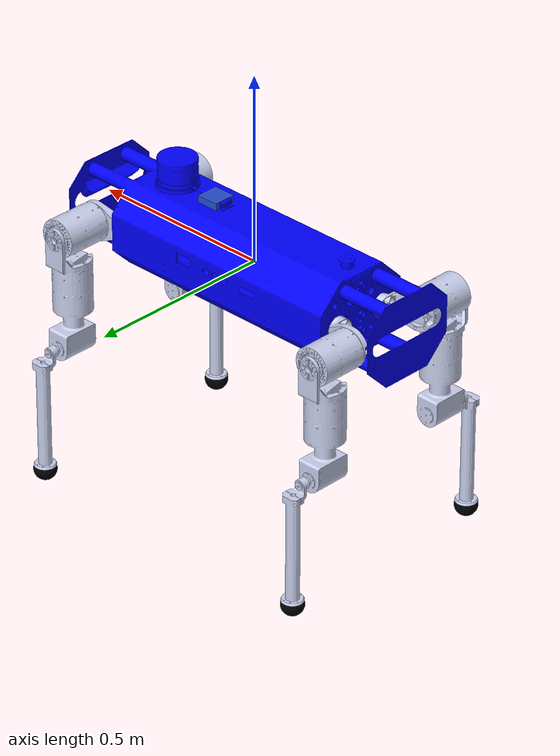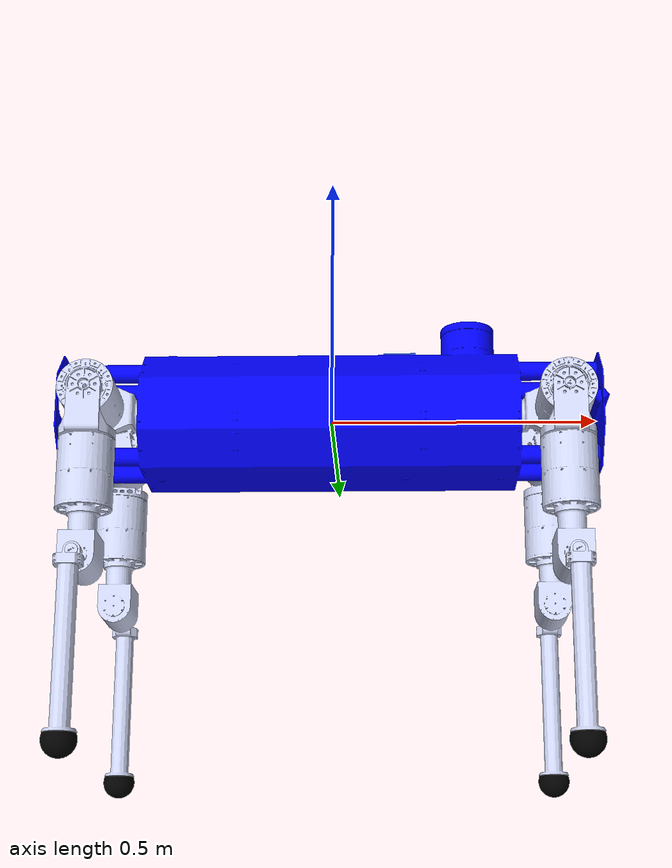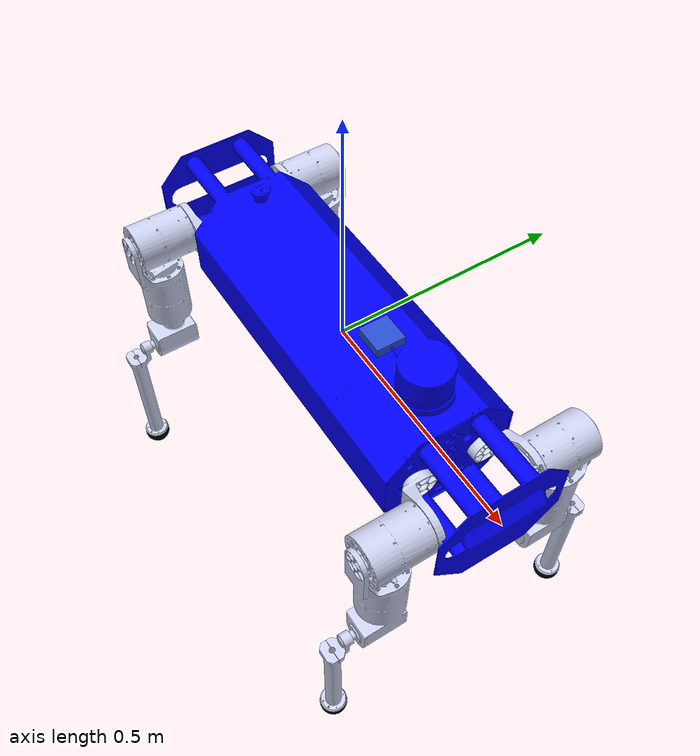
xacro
<?xml version="1.0" encoding="utf-8"?>
<robot name="quadruped_model" xmlns:xacro="http://ros.org/wiki/xacro">

    <link name="imu_link">
      <inertial>
        <mass value="0.1"/>
        <origin rpy="0 0 0" xyz="0 0 0"/>
        <inertia ixx="0.0001" ixy="0" ixz="0" iyy="0.000001" iyz="0" izz="0.0001"/>
      </inertial>
      <visual>
        <origin rpy="0 0 0" xyz="0 0 0"/>
        <geometry>
          <box size="0.06 0.06 0.02"/>
        </geometry>
      </visual>
      <collision>
        <origin rpy="0 0 0" xyz="0 0 0"/>
        <geometry>
          <box size="0.06 0.06 0.02"/>
        </geometry>
      </collision>
    </link>
    <joint name="imu_joint" type="fixed">
        <axis xyz="0 0 0"/>
        <origin xyz="0.13 0 0.12" rpy="0 0 0"/>
        <parent link="base_link"/>
        <child link="imu_link"/>
    </joint>

    <xacro:include filename="$(find simpledog)/urdf/simpledog_gazebo.urdf.xacro" />
    <xacro:include filename="$(find simpledog)/urdf/joint_gazebo.urdf.xacro" />
    <xacro:include filename="$(find simpledog)/urdf/foot_sensor_gazebo.urdf.xacro" />

    <!--load kinect urdf-->

  <link name="zed_base_link">
    <origin xyz="0 0 0" rpy="0 0 0"/>
  </link>
  <joint name="zed_base_joint" type="fixed">
    <origin xyz="0.48 0.0 0.15" rpy="0 0.8 0" />
    <parent link="base_link"/>
    <child link="zed_base_link"/>
  </joint>

  <!-- simple dog joints macros configure the joint driver and param-->
  <xacro:simpledog_joint joint_prefix="front_left_1_"> </xacro:simpledog_joint>
  <xacro:simpledog_joint joint_prefix="front_left_2_"> </xacro:simpledog_joint>
  <xacro:simpledog_joint joint_prefix="front_left_3_"> </xacro:simpledog_joint>
  <xacro:simpledog_joint joint_prefix="front_right_1_"> </xacro:simpledog_joint>
  <xacro:simpledog_joint joint_prefix="front_right_2_"> </xacro:simpledog_joint>
  <xacro:simpledog_joint joint_prefix="front_right_3_"> </xacro:simpledog_joint>
  <xacro:simpledog_joint joint_prefix="rear_right_1_"> </xacro:simpledog_joint>
  <xacro:simpledog_joint joint_prefix="rear_right_2_"> </xacro:simpledog_joint>
  <xacro:simpledog_joint joint_prefix="rear_right_3_"> </xacro:simpledog_joint>
  <xacro:simpledog_joint joint_prefix="rear_left_1_"> </xacro:simpledog_joint>
  <xacro:simpledog_joint joint_prefix="rear_left_2_"> </xacro:simpledog_joint>
  <xacro:simpledog_joint joint_prefix="rear_left_3_"> </xacro:simpledog_joint>

  <xacro:simpledog_foot_sensors foot_prefix="lf_foot" joint_prefix="front_left_3_"> </xacro:simpledog_foot_sensors>
  <xacro:simpledog_foot_sensors foot_prefix="rf_foot" joint_prefix="front_right_3_"> </xacro:simpledog_foot_sensors>
  <xacro:simpledog_foot_sensors foot_prefix="rh_foot" joint_prefix="rear_right_3_"> </xacro:simpledog_foot_sensors>
  <xacro:simpledog_foot_sensors foot_prefix="lh_foot" joint_prefix="rear_left_3_"> </xacro:simpledog_foot_sensors>

  <link
    name="base_link">
    <inertial>
      <origin
        xyz="0.006699 -0.000736 0.001288"
        rpy="0 0 0" />
      <mass
        value="37.801" />
      <inertia
        ixx="0.263893"
        ixy="0"
        ixz="0"
        iyy="2.018032"
        iyz="0"
        izz="2.056458" />
    </inertial>
    <visual>
      <origin
        xyz="0 0 0"
        rpy="0 0 0" />
      <geometry>
        <mesh
          filename="package://simpledog/meshes/quadruped/base_link.STL" />
      </geometry>
      <material
        name="">
        <color
          rgba="0 0 1 1" />
      </material>
    </visual>
    <collision>
      <origin
        xyz="0 0 0"
        rpy="0 0 0" />
      <geometry>
        <mesh
          filename="package://simpledog/meshes/quadruped/base_link.STL" />
      </geometry>
    </collision>
  </link>
  <link
    name="front_left_1_Link">
    <inertial>
      <origin
        xyz="0.000688 0.10488 -0.003776"
        rpy="0 0 0" />
      <mass
        value="2.9231" />
      <inertia
        ixx="0.004820"
        ixy="0"
        ixz="0"
        iyy="0.007868"
        iyz="0"
        izz="0.008241" />
    </inertial>
    <visual>
      <origin
        xyz="0 0 0"
        rpy="0 0 0" />
      <geometry>
        <mesh
          filename="package://simpledog/meshes/quadruped/Origin_front_left_1_link.STL" />
      </geometry>
      <material
        name="">
        <color
          rgba="0.79216 0.81961 0.93333 1" />
      </material>
    </visual>
    <collision>
      <origin
        xyz="0 0 0"
        rpy="0 0 0" />
      <geometry>
        <mesh
          filename="package://simpledog/meshes/quadruped/Origin_front_left_1_link.STL" />
      </geometry>
    </collision>
  </link>
  <joint
    name="front_left_1_joint"
    type="revolute">
    <origin
      xyz="0.427 0.075 -0.0095"
      rpy="0 1.5708 0" />
    <parent
      link="base_link" />
    <child
      link="front_left_1_Link" />
    <axis
      xyz="0 0 1" />
      <limit
      effort="60"
      velocity="10"
      lower="-3.0"
      upper="3.0"/>

  </joint>
  <link
    name="front_left_2_Link">
    <inertial>
      <origin
        xyz="0.18475 3.2E-05 0.12906"
        rpy="0 0 0" />
      <mass
        value="4.2164" />
      <inertia
        ixx="0.006286"
        ixy="0"
        ixz="0"
        iyy="0.028156"
        iyz="0"
        izz="0.029242" />
    </inertial>
    <visual>
      <origin
        xyz="0 0 0"
        rpy="0 0 0" />
      <geometry>
        <mesh
          filename="package://simpledog/meshes/quadruped/Origin_front_left_2_link.STL" />
      </geometry>
      <material
        name="">
        <color
          rgba="0.79216 0.81961 0.93333 1" />
      </material>
    </visual>
    <collision>
      <origin
        xyz="0 0 0"
        rpy="0 0 0" />
      <geometry>
        <mesh
          filename="package://simpledog/meshes/quadruped/Origin_front_left_2_link.STL" />
      </geometry>
    </collision>
  </link>
  <joint
    name="front_left_2_joint"
    type="continuous">
    <origin
      xyz="0 0 0"
      rpy="-1.5708 0 0" />
    <parent
      link="front_left_1_Link" />
    <child
      link="front_left_2_Link" />
    <axis
      xyz="0 0 1" />
      <limit
      effort="60"
      velocity="10"
      lower="-7.0"
      upper="7.0"/>

  </joint>
  <link
    name="front_left_3_Link">
    <inertial>
      <origin
        xyz="0.20231 0.000199 0.22543"
        rpy="0 0 0" />
      <mass
        value="0.44457" />
      <inertia
        ixx="0.000385"
        ixy="0"
        ixz="0"
        iyy="0.006223"
        iyz="0"
        izz="0.006502" />
    </inertial>
    <visual>
      <origin
        xyz="0 0 0"
        rpy="0 0 0" />
      <geometry>
        <mesh
          filename="package://simpledog/meshes/quadruped/Origin_front_left_3_link.STL" />
      </geometry>
      <material
        name="">
        <color
          rgba="0.79216 0.81961 0.93333 1" />
      </material>
    </visual>
    <collision>
      <origin
        xyz="0 0 0"
        rpy="0 0 0" />
      <geometry>
        <mesh
          filename="package://simpledog/meshes/quadruped/Origin_front_left_3_link.STL" />
      </geometry>
    </collision>
  </link>
  <joint
    name="front_left_3_joint"
    type="continuous">
    <origin
      xyz="0.308 0 0"
      rpy="0 0 0" />
    <parent
      link="front_left_2_Link" />
    <child
      link="front_left_3_Link" />
    <axis
      xyz="0 0 1" />
      <limit
      effort="60"
      velocity="10"
      lower="-3.0"
      upper="3.0"/>

  </joint>
  <link
    name="lf_foot_Link">
    <inertial>
      <origin
        xyz="0.022126 -1.2357E-13 0.00049896"
        rpy="0 0 0" />
      <mass
        value="0.03332" />
      <inertia
        ixx="0.000014"
        ixy="0"
        ixz="0"
        iyy="0.000014"
        iyz="0"
        izz="0.000019" />
    </inertial>
    <visual>
      <origin
        xyz="0 0 0"
        rpy="0 0 0" />
      <geometry>
        <mesh
          filename="package://simpledog/meshes/quadruped/Origin_lf_foot_link.STL" />
      </geometry>
      <material
        name="">
        <color
          rgba="0 0 0 1" />
      </material>
    </visual>
    <collision>
      <origin
        xyz="0 0 0"
        rpy="0 0 0" />
      <geometry>
        <mesh
          filename="package://simpledog/meshes/quadruped/Origin_lf_foot_link.STL" />
      </geometry>
    </collision>
  </link>
  <joint
    name="lf_foot_joint"
    type="fixed">
    <origin
      xyz="0.308 0 0.23"
      rpy="0 0 0" />
    <parent
      link="front_left_3_Link" />
    <child
      link="lf_foot_Link" />
    <axis
      xyz="0 0 0" />
  </joint>
  <link
    name="front_right_1_Link">
    <inertial>
      <origin
        xyz="-0.000688 0.104882 0.003776"
        rpy="0 0 0" />
      <mass
        value="2.923111" />
      <inertia
        ixx="0.004820"
        ixy="0"
        ixz="0"
        iyy="0.007868"
        iyz="0"
        izz="0.008241" />
    </inertial>
    <visual>
      <origin
        xyz="0 0 0"
        rpy="0 0 0" />
      <geometry>
        <mesh
          filename="package://simpledog/meshes/quadruped/Origin_front_right_1_link.STL" />
      </geometry>
      <material
        name="">
        <color
          rgba="0.79216 0.81961 0.93333 1" />
      </material>
    </visual>
    <collision>
      <origin
        xyz="0 0 0"
        rpy="0 0 0" />
      <geometry>
        <mesh
          filename="package://simpledog/meshes/quadruped/Origin_front_right_1_link.STL" />
      </geometry>
    </collision>
  </link>
  <joint
    name="front_right_1_joint"
    type="revolute">
    <origin
      xyz="0.427 -0.075 -0.0095"
      rpy="3.1416 1.5708 0" />
    <parent
      link="base_link" />
    <child
      link="front_right_1_Link" />
    <axis
      xyz="0 0 1" />
      <limit
      effort="60"
      velocity="10"
      lower="-3.0"
      upper="3.0"/>

  </joint>
  <link
    name="front_right_2_Link">
    <inertial>
      <origin
        xyz="0.184747 3.2E-05 0.129056"
        rpy="0 0 0" />
      <mass
        value="4.216358" />
      <inertia
        ixx="0.006286"
        ixy="0"
        ixz="0"
        iyy="0.028156"
        iyz="0"
        izz="0.029242" />
    </inertial>
    <visual>
      <origin
        xyz="0 0 0"
        rpy="0 0 0" />
      <geometry>
        <mesh
          filename="package://simpledog/meshes/quadruped/Origin_front_right_2_link.STL" />
      </geometry>
      <material
        name="">
        <color
          rgba="0.79216 0.81961 0.93333 1" />
      </material>
    </visual>
    <collision>
      <origin
        xyz="0 0 0"
        rpy="0 0 0" />
      <geometry>
        <mesh
          filename="package://simpledog/meshes/quadruped/Origin_front_right_2_link.STL" />
      </geometry>
    </collision>
  </link>
  <joint
    name="front_right_2_joint"
    type="continuous">
    <origin
      xyz="0 0 0"
      rpy="-1.5708 0 0" />
    <parent
      link="front_right_1_Link" />
    <child
      link="front_right_2_Link" />
    <axis
      xyz="0 0 1" />
      <limit
      effort="60"
      velocity="10"
      lower="-7.0"
      upper="7.0"/>

  </joint>
  <link
    name="front_right_3_Link">
    <inertial>
      <origin
        xyz="0.202313 0.000199 0.225432"
        rpy="0 0 0" />
      <mass
        value="0.444569" />
      <inertia
        ixx="0.000385"
        ixy="0"
        ixz="0"
        iyy="0.006223"
        iyz="0"
        izz="0.006502" />
    </inertial>
    <visual>
      <origin
        xyz="0 0 0"
        rpy="0 0 0" />
      <geometry>
        <mesh
          filename="package://simpledog/meshes/quadruped/Origin_front_right_3_link.STL" />
      </geometry>
      <material
        name="">
        <color
          rgba="0.79216 0.81961 0.93333 1" />
      </material>
    </visual>
    <collision>
      <origin
        xyz="0 0 0"
        rpy="0 0 0" />
      <geometry>
        <mesh
          filename="package://simpledog/meshes/quadruped/Origin_front_right_3_link.STL" />
      </geometry>
    </collision>
  </link>
  <joint
    name="front_right_3_joint"
    type="continuous">
    <origin
      xyz="0.308 0 0"
      rpy="0 0 0" />
    <parent
      link="front_right_2_Link" />
    <child
      link="front_right_3_Link" />
    <axis
      xyz="0 0 1" />
      <limit
      effort="60"
      velocity="10"
      lower="-3.0"
      upper="3.0"/>

  </joint>
  <link
    name="rf_foot_Link">
    <inertial>
      <origin
        xyz="0.022126 -4.4892E-13 -1.0375E-06"
        rpy="0 0 0" />
      <mass
        value="0.03332" />
      <inertia
        ixx="0.000014"
        ixy="0"
        ixz="0"
        iyy="0.000014"
        iyz="0"
        izz="0.000019" />
    </inertial>
    <visual>
      <origin
        xyz="0 0 0"
        rpy="0 0 0" />
      <geometry>
        <mesh
          filename="package://simpledog/meshes/quadruped/Orgin_rf_foot_link.STL" />
      </geometry>
      <material
        name="">
        <color
          rgba="0 0 0 1" />
      </material>
    </visual>
    <collision>
      <origin
        xyz="0 0 0"
        rpy="0 0 0" />
      <geometry>
        <mesh
          filename="package://simpledog/meshes/quadruped/Orgin_rf_foot_link.STL" />
      </geometry>
    </collision>
  </link>
  <joint
    name="rf_foot_joint"
    type="fixed">
    <origin
      xyz="0.308 0 0.22053"
      rpy="0 0 0" />
    <parent
      link="front_right_3_Link" />
    <child
      link="rf_foot_Link" />
    <axis
      xyz="0 0 0" />
  </joint>
  <link
    name="rear_right_1_Link">
    <inertial>
      <origin
        xyz="0.000688 0.104882 0.003776"
        rpy="0 0 0" />
      <mass
        value="2.923111" />
      <inertia
        ixx="0.004820"
        ixy="0"
        ixz="0"
        iyy="0.007868"
        iyz="0"
        izz="0.008241" />
    </inertial>
    <visual>
      <origin
        xyz="0 0 0"
        rpy="0 0 0" />
      <geometry>
        <mesh
          filename="package://simpledog/meshes/quadruped/Origin_rear_right_1_link.STL" />
      </geometry>
      <material
        name="">
        <color
          rgba="0.79216 0.81961 0.93333 1" />
      </material>
    </visual>
    <collision>
      <origin
        xyz="0 0 0"
        rpy="0 0 0" />
      <geometry>
        <mesh
          filename="package://simpledog/meshes/quadruped/Origin_rear_right_1_link.STL" />
      </geometry>
    </collision>
  </link>
  <joint
    name="rear_right_1_joint"
    type="revolute">
    <origin
      xyz="-0.427 -0.075 -0.0095"
      rpy="3.1416 1.5708 0" />
    <parent
      link="base_link" />
    <child
      link="rear_right_1_Link" />
    <axis
      xyz="0 0 1" />
      <limit
      effort="60"
      velocity="10"
      lower="-3.0"
      upper="3.0"/>

  </joint>
  <link
    name="rear_right_2_Link">
    <inertial>
      <origin
        xyz="0.184747 3.2E-05 0.129056"
        rpy="0 0 0" />
      <mass
        value="4.216358" />
      <inertia
        ixx="0.006286"
        ixy="0"
        ixz="0"
        iyy="0.028156"
        iyz="0"
        izz="0.029242" />
    </inertial>
    <visual>
      <origin
        xyz="0 0 0"
        rpy="0 0 0" />
      <geometry>
        <mesh
          filename="package://simpledog/meshes/quadruped/Origin_rear_right_2_link.STL" />
      </geometry>
      <material
        name="">
        <color
          rgba="0.79216 0.81961 0.93333 1" />
      </material>
    </visual>
    <collision>
      <origin
        xyz="0 0 0"
        rpy="0 0 0" />
      <geometry>
        <mesh
          filename="package://simpledog/meshes/quadruped/Origin_rear_right_2_link.STL" />
      </geometry>
    </collision>
  </link>
  <joint
    name="rear_right_2_joint"
    type="continuous">
    <origin
      xyz="0 0 0"
      rpy="-1.5708 0 0" />
    <parent
      link="rear_right_1_Link" />
    <child
      link="rear_right_2_Link" />
    <axis
      xyz="0 0 1" />
      <limit
      effort="60"
      velocity="10"
      lower="-7.0"
      upper="7.0"/>

  </joint>
  <link
    name="rear_right_3_Link">
    <inertial>
      <origin
        xyz="0.202313 0.000199 0.225432"
        rpy="0 0 0" />
      <mass
        value="0.444569" />
      <inertia
        ixx="0.000385"
        ixy="0"
        ixz="0"
        iyy="0.006223"
        iyz="0"
        izz="0.006502"/>
    </inertial>
    <visual>
      <origin
        xyz="0 0 0"
        rpy="0 0 0" />
      <geometry>
        <mesh
          filename="package://simpledog/meshes/quadruped/Origin_rear_right_3_link.STL" />
      </geometry>
      <material
        name="">
        <color
          rgba="0.79216 0.81961 0.93333 1" />
      </material>
    </visual>
    <collision>
      <origin
        xyz="0 0 0"
        rpy="0 0 0" />
      <geometry>
        <mesh
          filename="package://simpledog/meshes/quadruped/Origin_rear_right_3_link.STL" />
      </geometry>
    </collision>
  </link>
  <joint
    name="rear_right_3_joint"
    type="continuous">
    <origin
      xyz="0.308 0 0"
      rpy="0 0 0" />
    <parent
      link="rear_right_2_Link" />
    <child
      link="rear_right_3_Link" />
    <axis
      xyz="0 0 1" />
      <limit
      effort="60"
      velocity="10"
      lower="-3.0"
      upper="3.0"/>

  </joint>
  <link
    name="rh_foot_Link">
    <inertial>
      <origin
        xyz="0.022126 -1.6187E-13 -1E-06"
        rpy="0 0 0" />
      <mass
        value="0.03332" />
      <inertia
        ixx="0.000014"
        ixy="0"
        ixz="0"
        iyy="0.000014"
        iyz="0"
        izz="0.000019" />
    </inertial>
    <visual>
      <origin
        xyz="0 0 0"
        rpy="0 0 0" />
      <geometry>
        <mesh
          filename="package://simpledog/meshes/quadruped/Origin_rr_foot_link.STL" />
      </geometry>
      <material
        name="">
        <color
          rgba="0 0 0 1" />
      </material>
    </visual>
    <collision>
      <origin
        xyz="0 0 0"
        rpy="0 0 0" />
      <geometry>
        <mesh
          filename="package://simpledog/meshes/quadruped/Origin_rr_foot_link.STL" />
      </geometry>
    </collision>
  </link>
  <joint
    name="rh_foot_joint"
    type="fixed">
    <origin
      xyz="0.308 0 0.22053"
      rpy="0 0 0" />
    <parent
      link="rear_right_3_Link" />
    <child
      link="rh_foot_Link" />
    <axis
      xyz="0 0 0" />
  </joint>
  <link
    name="rear_left_1_Link">
    <inertial>
      <origin
        xyz="-0.000688 0.10488 0.003776"
        rpy="0 0 0" />
      <mass
        value="2.9231" />
      <inertia
        ixx="0.004820"
        ixy="0"
        ixz="0"
        iyy="0.007868"
        iyz="0"
        izz="0.008241" />
    </inertial>
    <visual>
      <origin
        xyz="0 0 0"
        rpy="0 0 0" />
      <geometry>
        <mesh
          filename="package://simpledog/meshes/quadruped/Origin_rear_left_1_link.STL" />
      </geometry>
      <material
        name="">
        <color
          rgba="0.79216 0.81961 0.93333 1" />
      </material>
    </visual>
    <collision>
      <origin
        xyz="0 0 0"
        rpy="0 0 0" />
      <geometry>
        <mesh
          filename="package://simpledog/meshes/quadruped/Origin_rear_left_1_link.STL" />
      </geometry>
    </collision>
  </link>
  <joint
    name="rear_left_1_joint"
    type="revolute">
    <origin
      xyz="-0.427 0.075 -0.0095"
      rpy="0 1.5708 0" />
    <parent
      link="base_link" />
    <child
      link="rear_left_1_Link" />
    <axis
      xyz="0 0 1" />
      <limit
      effort="60"
      velocity="10"
      lower="-3.0"
      upper="3.0"/>

  </joint>
  <link
    name="rear_left_2_Link">
    <inertial>
      <origin
        xyz="0.184717 3.2E-05 0.129056"
        rpy="0 0 0" />
      <mass
        value="4.216358" />
      <inertia
        ixx="0.006286"
        ixy="0"
        ixz="0"
        iyy="0.028156"
        iyz="0"
        izz="0.029242" />
    </inertial>
    <visual>
      <origin
        xyz="0 0 0"
        rpy="0 0 0" />
      <geometry>
        <mesh
          filename="package://simpledog/meshes/quadruped/Origin_rear_left_2_link.STL" />
      </geometry>
      <material
        name="">
        <color
          rgba="0.79216 0.81961 0.93333 1" />
      </material>
    </visual>
    <collision>
      <origin
        xyz="0 0 0"
        rpy="0 0 0" />
      <geometry>
        <mesh
          filename="package://simpledog/meshes/quadruped/Origin_rear_left_2_link.STL" />
      </geometry>
    </collision>
  </link>
  <joint
    name="rear_left_2_joint"
    type="continuous">
    <origin
      xyz="0 0 0"
      rpy="-1.5708 0 0" />
    <parent
      link="rear_left_1_Link" />
    <child
      link="rear_left_2_Link" />
    <axis
      xyz="0 0 1" />
      <limit
      effort="60"
      velocity="10"
      lower="-7.0"
      upper="7.0"/>

  </joint>
  <link
    name="rear_left_3_Link">
    <inertial>
      <origin
        xyz="0.202313 0.000199 0.225432"
        rpy="0 0 0" />
      <mass
        value="0.444569" />
      <inertia
        ixx="0.000385"
        ixy="0"
        ixz="0"
        iyy="0.006223"
        iyz="0"
        izz="0.006502" />
    </inertial>
    <visual>
      <origin
        xyz="0 0 0"
        rpy="0 0 0" />
      <geometry>
        <mesh
          filename="package://simpledog/meshes/quadruped/Origin_rear_left_3_link.STL" />
      </geometry>
      <material
        name="">
        <color
          rgba="0.79216 0.81961 0.93333 1" />
      </material>
    </visual>
    <collision>
      <origin
        xyz="0 0 0"
        rpy="0 0 0" />
      <geometry>
        <mesh
          filename="package://simpledog/meshes/quadruped/Origin_rear_left_3_link.STL" />
      </geometry>
    </collision>
  </link>
  <joint
    name="rear_left_3_joint"
    type="continuous">
    <origin
      xyz="0.308 0 0"
      rpy="0 0 0" />
    <parent
      link="rear_left_2_Link" />
    <child
      link="rear_left_3_Link" />
    <axis
      xyz="0 0 1" />
      <limit
      effort="60"
      velocity="10"
      lower="-3.0"
      upper="3.0"/>

  </joint>
  <link
    name="lh_foot_Link">
    <inertial>
      <origin
        xyz="0.022126 -7.7827E-14 0.00049896"
        rpy="0 0 0" />
      <mass
        value="0.03332" />
      <inertia
        ixx="0.000014"
        ixy="0"
        ixz="0"
        iyy="0.000014"
        iyz="0"
        izz="0.000019" />
    </inertial>
    <visual>
      <origin
        xyz="0 0 0"
        rpy="0 0 0" />
      <geometry>
        <mesh
          filename="package://simpledog/meshes/quadruped/Origin_rl_foot_link.STL" />
      </geometry>
      <material
        name="">
        <color
          rgba="0 0 0 1" />
      </material>
    </visual>
    <collision>
      <origin
        xyz="0 0 0"
        rpy="0 0 0" />
      <geometry>
        <mesh
          filename="package://simpledog/meshes/quadruped/Origin_rl_foot_link.STL" />
      </geometry>
    </collision>
  </link>
  <joint
    name="lh_foot_joint"
    type="fixed">
    <origin
      xyz="0.308 0 0.23"
      rpy="0 0 0" />
    <parent
      link="rear_left_3_Link" />
    <child
      link="lh_foot_Link" />
    <axis
      xyz="0 0 0" />
  </joint>
</robot>
